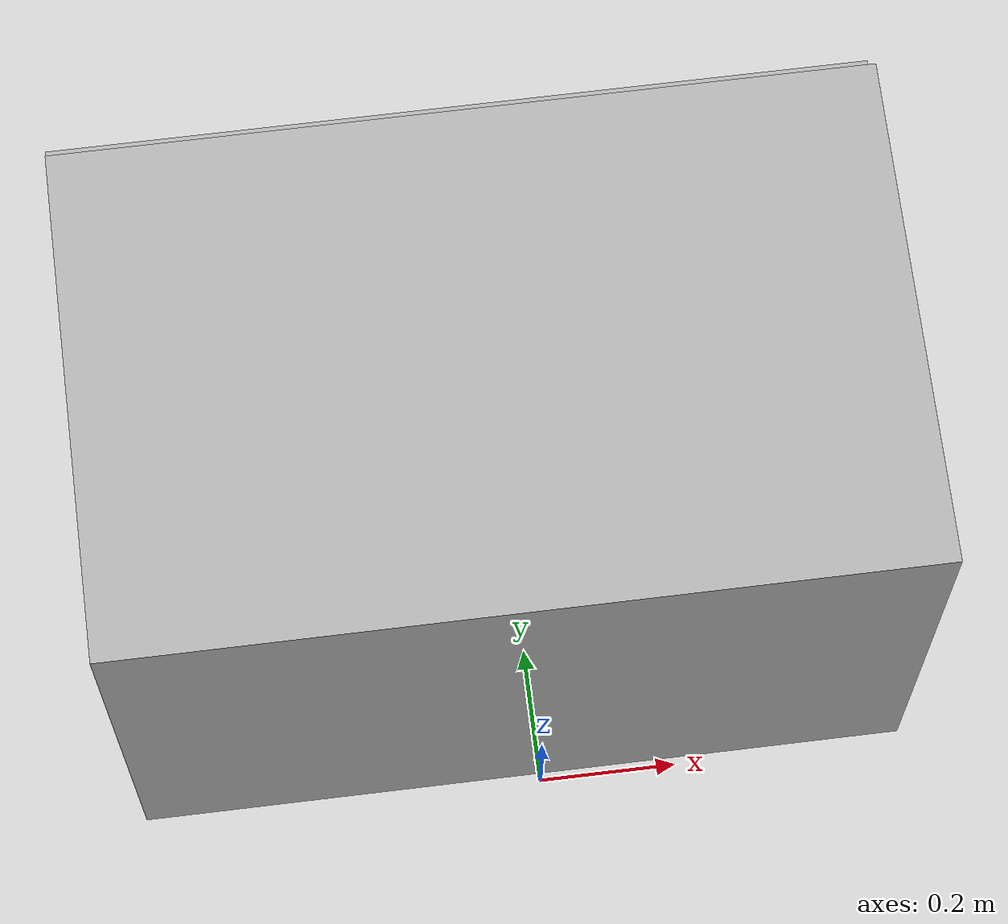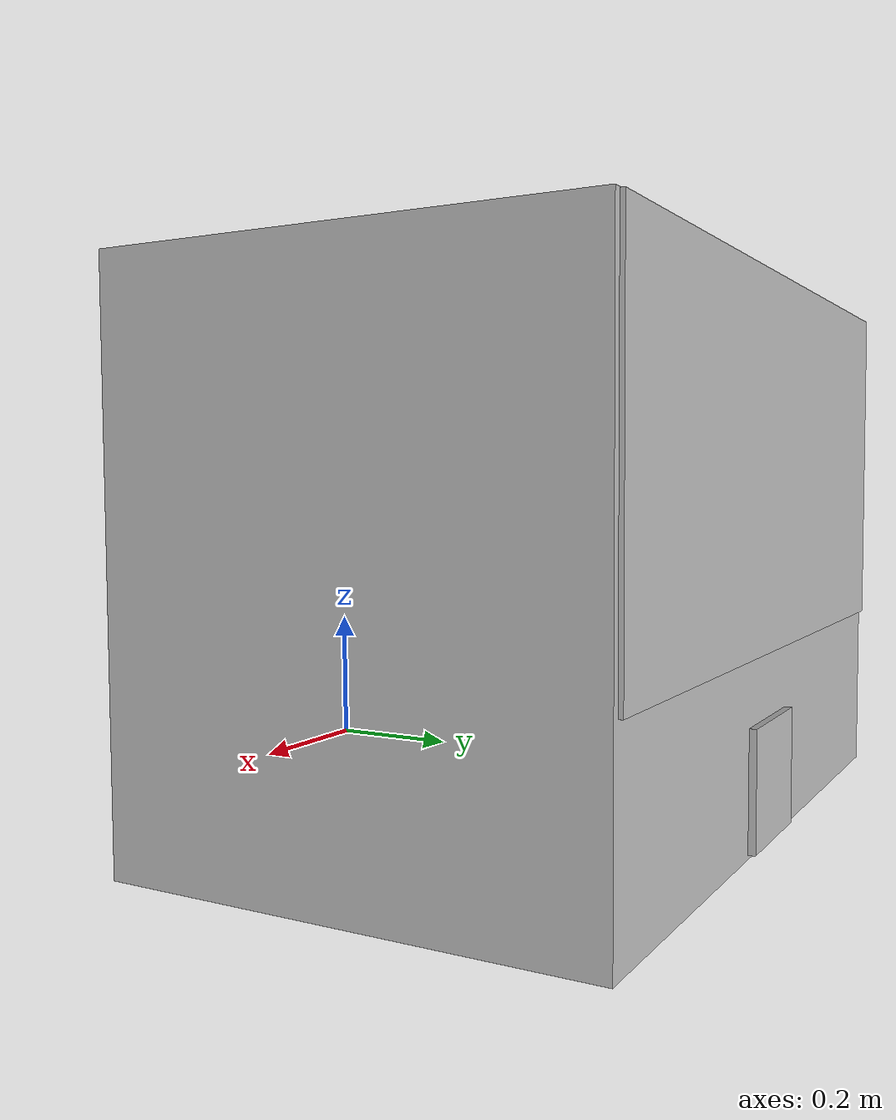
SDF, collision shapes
<?xml version='1.0' ?>
<sdf version='1.6'>
  <model name='vention-workstation'>
    <static>true</static>
    <link name='link'>
    <pose>0 0 0 0 0 0</pose>
        <!-- workspace top -->
        <collision name="workspace_top">
            <geometry>
                <box>
                    <size>1.125 0.00635 0.540</size>
                </box>
            </geometry>
            <pose>-0.025591 0.75812 0.45986 0 0 0</pose>
        </collision>
        <!-- workspace frame -->
        <collision name="workspace_frame">
            <geometry>
                <box>
                    <size>1.137 0.720 0.822</size>
                </box>
            </geometry>
            <pose>-0.020591 0.39494 0.31987 0 0 0</pose>
        </collision>
        <!-- mounting plate -->
        <collision name="mounting_plate">
            <geometry>
                <box>
                    <size>0.178 0.0113 0.178</size>
                </box>
            </geometry>
            <pose>-0.00076 0.76057 0.00489 0 0 0</pose>
        </collision>
      <visual name='visual'>
        <geometry>
          <mesh>
            <uri>model://vention-workstation/meshes/vention-workstation.glb</uri>
          </mesh>
        </geometry>
      </visual>
    </link>
  </model>
</sdf>
